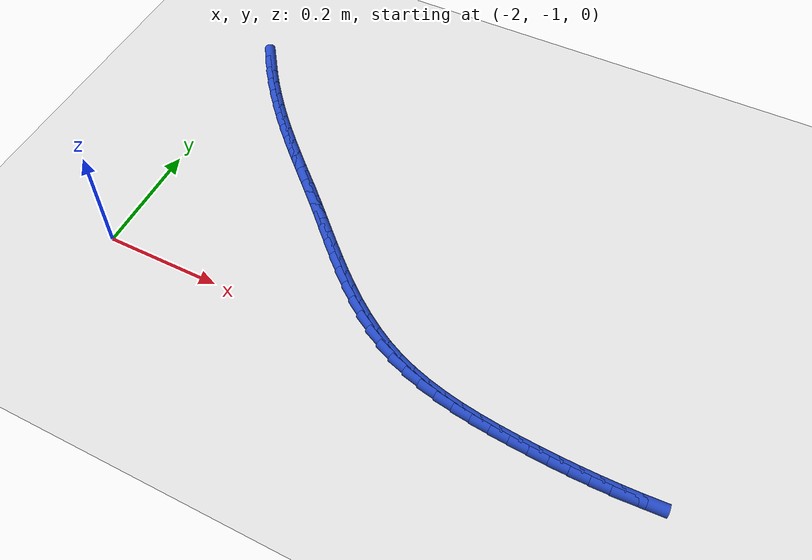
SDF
<sdf version="1.6">
 <world name="default">
  <model name="ground_plane">
   <static>1</static>
   <link name="link">
    <collision name="collision">
     <geometry><plane><normal>0 0 1</normal><size>100 100</size></plane></geometry>
     <surface><friction><ode><mu>100</mu><mu2>50</mu2></ode></friction></surface>
    </collision>
    <visual name="visual">
     <cast_shadows>0</cast_shadows>
     <geometry><plane><normal>0 0 1</normal><size>100 100</size></plane></geometry>
     <material>
      <script><uri>file://media/materials/scripts/gazebo.material</uri><name>Gazebo/WhiteGlow</name></script>
     </material>
    </visual>
   </link>
  </model>
  <model name="line">
   <link name="link_128">
    <pose>-1.974415606822583 -0.5180159830432506 0.01 0 1.57 -0.9745204661152143</pose>
    <collision name="collision">
     <geometry><cylinder><radius>0.01</radius><length>0.08</length></cylinder></geometry>
    </collision>
    <visual name="visual">
     <material>
      <script><name>Gazebo/Blue</name><uri>file://media/materials/scripts/gazebo.material</uri></script>
     </material>
     <geometry><cylinder><radius>0.01</radius><length>0.08</length></cylinder></geometry>
    </visual>
   </link>
   <link name="link_129">
    <pose>-1.9569108958230184 -0.5438081402375537 0.01 0 1.57 -0.9375121965009391</pose>
    <collision name="collision">
     <geometry><cylinder><radius>0.01</radius><length>0.08</length></cylinder></geometry>
    </collision>
    <visual name="visual">
     <material>
      <script><name>Gazebo/Blue</name><uri>file://media/materials/scripts/gazebo.material</uri></script>
     </material>
     <geometry><cylinder><radius>0.01</radius><length>0.08</length></cylinder></geometry>
    </visual>
   </link>
   <link name="link_130">
    <pose>-1.9384268947822068 -0.5689853237629553 0.01 0 1.57 -0.9037590565442077</pose>
    <collision name="collision">
     <geometry><cylinder><radius>0.01</radius><length>0.08</length></cylinder></geometry>
    </collision>
    <visual name="visual">
     <material>
      <script><name>Gazebo/Blue</name><uri>file://media/materials/scripts/gazebo.material</uri></script>
     </material>
     <geometry><cylinder><radius>0.01</radius><length>0.08</length></cylinder></geometry>
    </visual>
   </link>
   <link name="link_131">
    <pose>-1.9191261300986024 -0.5934960017670544 0.01 0 1.57 -0.8728963668379175</pose>
    <collision name="collision">
     <geometry><cylinder><radius>0.01</radius><length>0.08</length></cylinder></geometry>
    </collision>
    <visual name="visual">
     <material>
      <script><name>Gazebo/Blue</name><uri>file://media/materials/scripts/gazebo.material</uri></script>
     </material>
     <geometry><cylinder><radius>0.01</radius><length>0.08</length></cylinder></geometry>
    </visual>
   </link>
   <link name="link_132">
    <pose>-1.8991711281706583 -0.6172886423974474 0.01 0 1.57 -0.8445967167450543</pose>
    <collision name="collision">
     <geometry><cylinder><radius>0.01</radius><length>0.08</length></cylinder></geometry>
    </collision>
    <visual name="visual">
     <material>
      <script><name>Gazebo/Blue</name><uri>file://media/materials/scripts/gazebo.material</uri></script>
     </material>
     <geometry><cylinder><radius>0.01</radius><length>0.08</length></cylinder></geometry>
    </visual>
   </link>
   <link name="link_133">
    <pose>-1.8787244153968277 -0.6403117138017334 0.01 0 1.57 -0.8187806741696364</pose>
    <collision name="collision">
     <geometry><cylinder><radius>0.01</radius><length>0.08</length></cylinder></geometry>
    </collision>
    <visual name="visual">
     <material>
      <script><name>Gazebo/Blue</name><uri>file://media/materials/scripts/gazebo.material</uri></script>
     </material>
     <geometry><cylinder><radius>0.01</radius><length>0.08</length></cylinder></geometry>
    </visual>
   </link>
   <link name="link_134">
    <pose>-1.857939646737442 -0.662532654544375 0.01 0 1.57 -0.7970598819691169</pose>
    <collision name="collision">
     <geometry><cylinder><radius>0.01</radius><length>0.08</length></cylinder></geometry>
    </collision>
    <visual name="visual">
     <material>
      <script><name>Gazebo/Blue</name><uri>file://media/materials/scripts/gazebo.material</uri></script>
     </material>
     <geometry><cylinder><radius>0.01</radius><length>0.08</length></cylinder></geometry>
    </visual>
   </link>
   <link name="link_135">
    <pose>-1.836900698222445 -0.6840681163590839 0.01 0 1.57 -0.7805483869803654</pose>
    <collision name="collision">
     <geometry><cylinder><radius>0.01</radius><length>0.08</length></cylinder></geometry>
    </collision>
    <visual name="visual">
     <material>
      <script><name>Gazebo/Blue</name><uri>file://media/materials/scripts/gazebo.material</uri></script>
     </material>
     <geometry><cylinder><radius>0.01</radius><length>0.08</length></cylinder></geometry>
    </visual>
   </link>
   <link name="link_136">
    <pose>-1.815658442406831 -0.7051053246192981 0.01 0 1.57 -0.7695337970943844</pose>
    <collision name="collision">
     <geometry><cylinder><radius>0.01</radius><length>0.08</length></cylinder></geometry>
    </collision>
    <visual name="visual">
     <material>
      <script><name>Gazebo/Blue</name><uri>file://media/materials/scripts/gazebo.material</uri></script>
     </material>
     <geometry><cylinder><radius>0.01</radius><length>0.08</length></cylinder></geometry>
    </visual>
   </link>
   <link name="link_137">
    <pose>-1.7942635553263846 -0.7258319249292273 0.01 0 1.57 -0.7641853325728034</pose>
    <collision name="collision">
     <geometry><cylinder><radius>0.01</radius><length>0.08</length></cylinder></geometry>
    </collision>
    <visual name="visual">
     <material>
      <script><name>Gazebo/Blue</name><uri>file://media/materials/scripts/gazebo.material</uri></script>
     </material>
     <geometry><cylinder><radius>0.01</radius><length>0.08</length></cylinder></geometry>
    </visual>
   </link>
   <link name="link_138">
    <pose>-1.7727667130168923 -0.7464355628930804 0.01 0 1.57 -0.7645609519463196</pose>
    <collision name="collision">
     <geometry><cylinder><radius>0.01</radius><length>0.08</length></cylinder></geometry>
    </collision>
    <visual name="visual">
     <material>
      <script><name>Gazebo/Blue</name><uri>file://media/materials/scripts/gazebo.material</uri></script>
     </material>
     <geometry><cylinder><radius>0.01</radius><length>0.08</length></cylinder></geometry>
    </visual>
   </link>
   <link name="link_139">
    <pose>-1.7512185915141374 -0.7671038841150664 0.01 0 1.57 -0.7706103593212074</pose>
    <collision name="collision">
     <geometry><cylinder><radius>0.01</radius><length>0.08</length></cylinder></geometry>
    </collision>
    <visual name="visual">
     <material>
      <script><name>Gazebo/Blue</name><uri>file://media/materials/scripts/gazebo.material</uri></script>
     </material>
     <geometry><cylinder><radius>0.01</radius><length>0.08</length></cylinder></geometry>
    </visual>
   </link>
   <link name="link_140">
    <pose>-1.7296698668539083 -0.7880245341993937 0.01 0 1.57 -0.7806693426331912</pose>
    <collision name="collision">
     <geometry><cylinder><radius>0.01</radius><length>0.08</length></cylinder></geometry>
    </collision>
    <visual name="visual">
     <material>
      <script><name>Gazebo/Blue</name><uri>file://media/materials/scripts/gazebo.material</uri></script>
     </material>
     <geometry><cylinder><radius>0.01</radius><length>0.08</length></cylinder></geometry>
    </visual>
   </link>
   <link name="link_141">
    <pose>-1.7081543609988024 -0.8093375103299426 0.01 0 1.57 -0.7858020747713003</pose>
    <collision name="collision">
     <geometry><cylinder><radius>0.01</radius><length>0.08</length></cylinder></geometry>
    </collision>
    <visual name="visual">
     <material>
      <script><name>Gazebo/Blue</name><uri>file://media/materials/scripts/gazebo.material</uri></script>
     </material>
     <geometry><cylinder><radius>0.01</radius><length>0.08</length></cylinder></geometry>
    </visual>
   </link>
   <link name="link_142">
    <pose>-1.6866067558302111 -0.830902529178678 0.01 0 1.57 -0.7829356251070483</pose>
    <collision name="collision">
     <geometry><cylinder><radius>0.01</radius><length>0.08</length></cylinder></geometry>
    </collision>
    <visual name="visual">
     <material>
      <script><name>Gazebo/Blue</name><uri>file://media/materials/scripts/gazebo.material</uri></script>
     </material>
     <geometry><cylinder><radius>0.01</radius><length>0.08</length></cylinder></geometry>
    </visual>
   </link>
   <link name="link_143">
    <pose>-1.6649256029205746 -0.8524771628422823 0.01 0 1.57 -0.7721174542315385</pose>
    <collision name="collision">
     <geometry><cylinder><radius>0.01</radius><length>0.08</length></cylinder></geometry>
    </collision>
    <visual name="visual">
     <material>
      <script><name>Gazebo/Blue</name><uri>file://media/materials/scripts/gazebo.material</uri></script>
     </material>
     <geometry><cylinder><radius>0.01</radius><length>0.08</length></cylinder></geometry>
    </visual>
   </link>
   <link name="link_144">
    <pose>-1.6430094014483203 -0.8738188352934795 0.01 0 1.57 -0.7532512763781987</pose>
    <collision name="collision">
     <geometry><cylinder><radius>0.01</radius><length>0.08</length></cylinder></geometry>
    </collision>
    <visual name="visual">
     <material>
      <script><name>Gazebo/Blue</name><uri>file://media/materials/scripts/gazebo.material</uri></script>
     </material>
     <geometry><cylinder><radius>0.01</radius><length>0.08</length></cylinder></geometry>
    </visual>
   </link>
   <link name="link_145">
    <pose>-1.6207566505918733 -0.8946849705049955 0.01 0 1.57 -0.7261108402926373</pose>
    <collision name="collision">
     <geometry><cylinder><radius>0.01</radius><length>0.08</length></cylinder></geometry>
    </collision>
    <visual name="visual">
     <material>
      <script><name>Gazebo/Blue</name><uri>file://media/materials/scripts/gazebo.material</uri></script>
     </material>
     <geometry><cylinder><radius>0.01</radius><length>0.08</length></cylinder></geometry>
    </visual>
   </link>
   <link name="link_146">
    <pose>-1.598065849529661 -0.9148329924495565 0.01 0 1.57 -0.6903707623534798</pose>
    <collision name="collision">
     <geometry><cylinder><radius>0.01</radius><length>0.08</length></cylinder></geometry>
    </collision>
    <visual name="visual">
     <material>
      <script><name>Gazebo/Blue</name><uri>file://media/materials/scripts/gazebo.material</uri></script>
     </material>
     <geometry><cylinder><radius>0.01</radius><length>0.08</length></cylinder></geometry>
    </visual>
   </link>
   <link name="link_147">
    <pose>-1.57483549744011 -0.9340203250998877 0.01 0 1.57 -0.6456562326179072</pose>
    <collision name="collision">
     <geometry><cylinder><radius>0.01</radius><length>0.08</length></cylinder></geometry>
    </collision>
    <visual name="visual">
     <material>
      <script><name>Gazebo/Blue</name><uri>file://media/materials/scripts/gazebo.material</uri></script>
     </material>
     <geometry><cylinder><radius>0.01</radius><length>0.08</length></cylinder></geometry>
    </visual>
   </link>
   <link name="link_148">
    <pose>-1.5509640935016458 -0.9520043924287152 0.01 0 1.57 -0.591619972664414</pose>
    <collision name="collision">
     <geometry><cylinder><radius>0.01</radius><length>0.08</length></cylinder></geometry>
    </collision>
    <visual name="visual">
     <material>
      <script><name>Gazebo/Blue</name><uri>file://media/materials/scripts/gazebo.material</uri></script>
     </material>
     <geometry><cylinder><radius>0.01</radius><length>0.08</length></cylinder></geometry>
    </visual>
   </link>
   <link name="link_149">
    <pose>-1.5263501368926957 -0.9685426184087631 0.01 0 1.57 -0.5280540123150366</pose>
    <collision name="collision">
     <geometry><cylinder><radius>0.01</radius><length>0.08</length></cylinder></geometry>
    </collision>
    <visual name="visual">
     <material>
      <script><name>Gazebo/Blue</name><uri>file://media/materials/scripts/gazebo.material</uri></script>
     </material>
     <geometry><cylinder><radius>0.01</radius><length>0.08</length></cylinder></geometry>
    </visual>
   </link>
   <link name="link_150">
    <pose>-1.500892126791686 -0.9833924270127575 0.01 0 1.57 -0.4550452000893484</pose>
    <collision name="collision">
     <geometry><cylinder><radius>0.01</radius><length>0.08</length></cylinder></geometry>
    </collision>
    <visual name="visual">
     <material>
      <script><name>Gazebo/Blue</name><uri>file://media/materials/scripts/gazebo.material</uri></script>
     </material>
     <geometry><cylinder><radius>0.01</radius><length>0.08</length></cylinder></geometry>
    </visual>
   </link>
   <link name="link_151">
    <pose>-1.4744886713916983 -0.9963114470724557 0.01 0 1.57 -0.3773822365553389</pose>
    <collision name="collision">
     <geometry><cylinder><radius>0.01</radius><length>0.08</length></cylinder></geometry>
    </collision>
    <visual name="visual">
     <material>
      <script><name>Gazebo/Blue</name><uri>file://media/materials/scripts/gazebo.material</uri></script>
     </material>
     <geometry><cylinder><radius>0.01</radius><length>0.08</length></cylinder></geometry>
    </visual>
   </link>
   <link name="link_152">
    <pose>-1.4470976610162425 -1.007168709687887 0.01 0 1.57 -0.30699199327653076</pose>
    <collision name="collision">
     <geometry><cylinder><radius>0.01</radius><length>0.08</length></cylinder></geometry>
    </collision>
    <visual name="visual">
     <material>
      <script><name>Gazebo/Blue</name><uri>file://media/materials/scripts/gazebo.material</uri></script>
     </material>
     <geometry><cylinder><radius>0.01</radius><length>0.08</length></cylinder></geometry>
    </visual>
   </link>
   <link name="link_153">
    <pose>-1.4188341739248111 -1.0161286316425258 0.01 0 1.57 -0.24584263680205617</pose>
    <collision name="collision">
     <geometry><cylinder><radius>0.01</radius><length>0.08</length></cylinder></geometry>
    </collision>
    <visual name="visual">
     <material>
      <script><name>Gazebo/Blue</name><uri>file://media/materials/scripts/gazebo.material</uri></script>
     </material>
     <geometry><cylinder><radius>0.01</radius><length>0.08</length></cylinder></geometry>
    </visual>
   </link>
   <link name="link_154">
    <pose>-1.389839047390028 -1.0234040357482865 0.01 0 1.57 -0.19370487870742803</pose>
    <collision name="collision">
     <geometry><cylinder><radius>0.01</radius><length>0.08</length></cylinder></geometry>
    </collision>
    <visual name="visual">
     <material>
      <script><name>Gazebo/Blue</name><uri>file://media/materials/scripts/gazebo.material</uri></script>
     </material>
     <geometry><cylinder><radius>0.01</radius><length>0.08</length></cylinder></geometry>
    </visual>
   </link>
   <link name="link_155">
    <pose>-1.3602531186845168 -1.0292077448170829 0.01 0 1.57 -0.15017431738252698</pose>
    <collision name="collision">
     <geometry><cylinder><radius>0.01</radius><length>0.08</length></cylinder></geometry>
    </collision>
    <visual name="visual">
     <material>
      <script><name>Gazebo/Blue</name><uri>file://media/materials/scripts/gazebo.material</uri></script>
     </material>
     <geometry><cylinder><radius>0.01</radius><length>0.08</length></cylinder></geometry>
    </visual>
   </link>
   <link name="link_156">
    <pose>-1.3302172250809015 -1.0337525816608293 0.01 0 1.57 -0.11479331179948404</pose>
    <collision name="collision">
     <geometry><cylinder><radius>0.01</radius><length>0.08</length></cylinder></geometry>
    </collision>
    <visual name="visual">
     <material>
      <script><name>Gazebo/Blue</name><uri>file://media/materials/scripts/gazebo.material</uri></script>
     </material>
     <geometry><cylinder><radius>0.01</radius><length>0.08</length></cylinder></geometry>
    </visual>
   </link>
   <link name="link_157">
    <pose>-1.299872203851807 -1.0372513690914384 0.01 0 1.57 -0.08713610570355397</pose>
    <collision name="collision">
     <geometry><cylinder><radius>0.01</radius><length>0.08</length></cylinder></geometry>
    </collision>
    <visual name="visual">
     <material>
      <script><name>Gazebo/Blue</name><uri>file://media/materials/scripts/gazebo.material</uri></script>
     </material>
     <geometry><cylinder><radius>0.01</radius><length>0.08</length></cylinder></geometry>
    </visual>
   </link>
   <link name="link_158">
    <pose>-1.269358892269857 -1.0399169299208246 0.01 0 1.57 -0.06672953987045496</pose>
    <collision name="collision">
     <geometry><cylinder><radius>0.01</radius><length>0.08</length></cylinder></geometry>
    </collision>
    <visual name="visual">
     <material>
      <script><name>Gazebo/Blue</name><uri>file://media/materials/scripts/gazebo.material</uri></script>
     </material>
     <geometry><cylinder><radius>0.01</radius><length>0.08</length></cylinder></geometry>
    </visual>
   </link>
   <link name="link_159">
    <pose>-1.238816066955336 -1.041958069116442 0.01 0 1.57 -0.04959183918912647</pose>
    <collision name="collision">
     <geometry><cylinder><radius>0.01</radius><length>0.08</length></cylinder></geometry>
    </collision>
    <visual name="visual">
     <material>
      <script><name>Gazebo/Blue</name><uri>file://media/materials/scripts/gazebo.material</uri></script>
     </material>
     <geometry><cylinder><radius>0.01</radius><length>0.08</length></cylinder></geometry>
    </visual>
   </link>
   <link name="link_160">
    <pose>-1.20832497413244 -1.043471419311398 0.01 0 1.57 -0.031473571514301496</pose>
    <collision name="collision">
     <geometry><cylinder><radius>0.01</radius><length>0.08</length></cylinder></geometry>
    </collision>
    <visual name="visual">
     <material>
      <script><name>Gazebo/Blue</name><uri>file://media/materials/scripts/gazebo.material</uri></script>
     </material>
     <geometry><cylinder><radius>0.01</radius><length>0.08</length></cylinder></geometry>
    </visual>
   </link>
   <link name="link_161">
    <pose>-1.1779030628041596 -1.0444292217958941 0.01 0 1.57 -0.012130031916814403</pose>
    <collision name="collision">
     <geometry><cylinder><radius>0.01</radius><length>0.08</length></cylinder></geometry>
    </collision>
    <visual name="visual">
     <material>
      <script><name>Gazebo/Blue</name><uri>file://media/materials/scripts/gazebo.material</uri></script>
     </material>
     <geometry><cylinder><radius>0.01</radius><length>0.08</length></cylinder></geometry>
    </visual>
   </link>
   <link name="link_162">
    <pose>-1.1475644637541746 -1.0447972480210332 0.01 0 1.57 0.00846437450797015</pose>
    <collision name="collision">
     <geometry><cylinder><radius>0.01</radius><length>0.08</length></cylinder></geometry>
    </collision>
    <visual name="visual">
     <material>
      <script><name>Gazebo/Blue</name><uri>file://media/materials/scripts/gazebo.material</uri></script>
     </material>
     <geometry><cylinder><radius>0.01</radius><length>0.08</length></cylinder></geometry>
    </visual>
   </link>
   <link name="link_163">
    <pose>-1.1173233077661653 -1.0445412694379181 0.01 0 1.57 0.030333362275750984</pose>
    <collision name="collision">
     <geometry><cylinder><radius>0.01</radius><length>0.08</length></cylinder></geometry>
    </collision>
    <visual name="visual">
     <material>
      <script><name>Gazebo/Blue</name><uri>file://media/materials/scripts/gazebo.material</uri></script>
     </material>
     <geometry><cylinder><radius>0.01</radius><length>0.08</length></cylinder></geometry>
    </visual>
   </link>
   <link name="link_164">
    <pose>-1.0871937256238107 -1.043627057497653 0.01 0 1.57 0.05349777806778922</pose>
    <collision name="collision">
     <geometry><cylinder><radius>0.01</radius><length>0.08</length></cylinder></geometry>
    </collision>
    <visual name="visual">
     <material>
      <script><name>Gazebo/Blue</name><uri>file://media/materials/scripts/gazebo.material</uri></script>
     </material>
     <geometry><cylinder><radius>0.01</radius><length>0.08</length></cylinder></geometry>
    </visual>
   </link>
  </model>
 </world>
</sdf>
